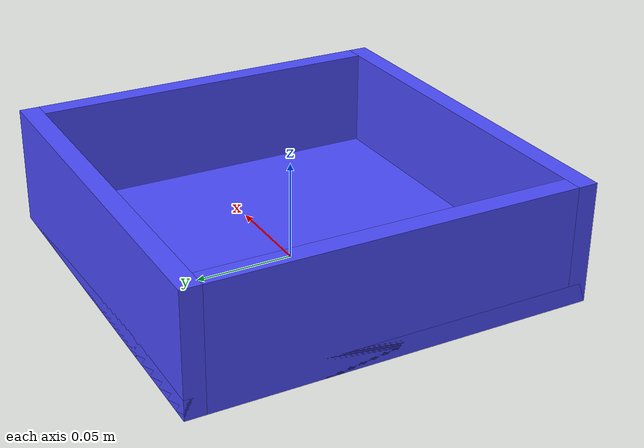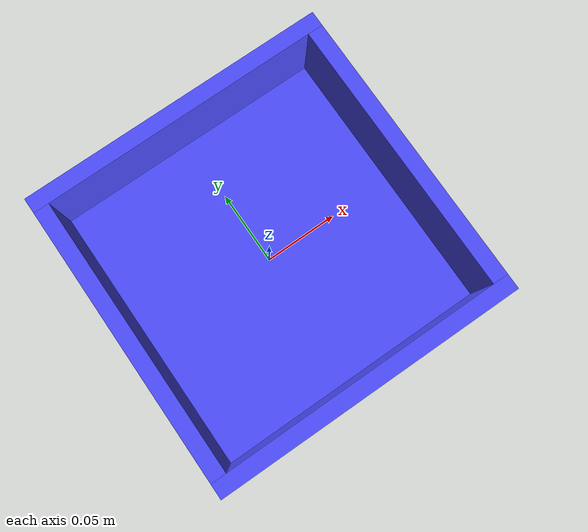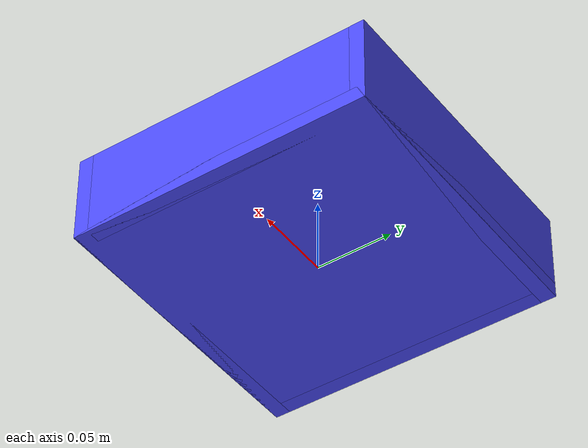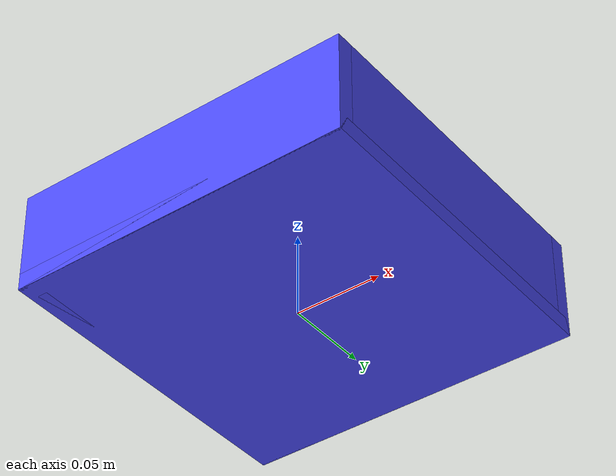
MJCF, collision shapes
<mujoco>
    <compiler angle="radian" inertiafromgeom="auto" inertiagrouprange="4 5"/>
    <asset>
        <texture name="T_boxmetal" type="cube" file="../textures/metal1.png"/>
        <texture name="T_boxwood" type="cube" file="../textures/wood1.png"/>
        <material name="box_col" rgba="0.3 0.3 1.0 0.5" shininess="0" specular="0"/>
        <material name="box_red" rgba=".8 0 0 1" shininess="1" reflectance=".7" specular=".5"/>
        <material name="box_blue" rgba="0 0 .8 1" shininess="1" reflectance=".7" specular=".5"/>
        <material name="box_metal" rgba=".35 .35 .35 1" texture="T_boxmetal" shininess="1" reflectance=".7" specular=".5"/>
        <material name="box_wood" texture="T_boxwood" shininess="1" reflectance=".7" specular=".5"/>

        <mesh file="../objects/meshes/bin/bin.stl" name="bin"/>
        <mesh file="../objects/meshes/box/boxtop.stl" name="boxtop"/>
        <mesh file="../objects/meshes/box/boxhandle.stl" name="boxhandle"/>
    </asset>

    <default>
      <default class="box_base">
          <joint armature="0.001" damping="2" limited="true"/>
          <geom conaffinity="0" contype="0" group="1" type="mesh"/>
          <default class="box_viz">
              <geom condim="4" type="mesh"/>
          </default>
          <default class="box_col">
              <geom conaffinity="1" condim="3" contype="0" group="4" material="box_col" solimp="0.99 0.99 0.01" solref="0.01 1"/>
          </default>
          <default class="top_col">
              <geom conaffinity="1" condim="4" contype="1" group="4" material="box_col" solimp="0.99 0.99 0.01" solref="0.01 1"/>
          </default>
      </default>
    </default>

    <worldbody>
            <body childclass="box_base" name="box">
                <geom material="box_red" mesh="bin" pos="0 0 0.03"/>
                <geom class="box_col" pos="0 -0.095 0.03" size="0.1 0.005 0.03" type="box" mass=".03"/>
                <geom class="box_col" pos="0 0.095 0.03" size="0.1 0.005 0.03" type="box" mass=".03"/>
                <geom class="box_col" pos="0.095 0 0.03" size="0.005 0.09 0.03" type="box" mass=".03"/>
                <geom class="box_col" pos="-0.095 0 0.03" size="0.005 0.09 0.03" type="box" mass=".03"/>
                <geom class="box_col" pos="0 0 0.005" size="0.1 0.1 0.005" type="box" mass=".03"/>
            </body>
    </worldbody>
</mujoco>
